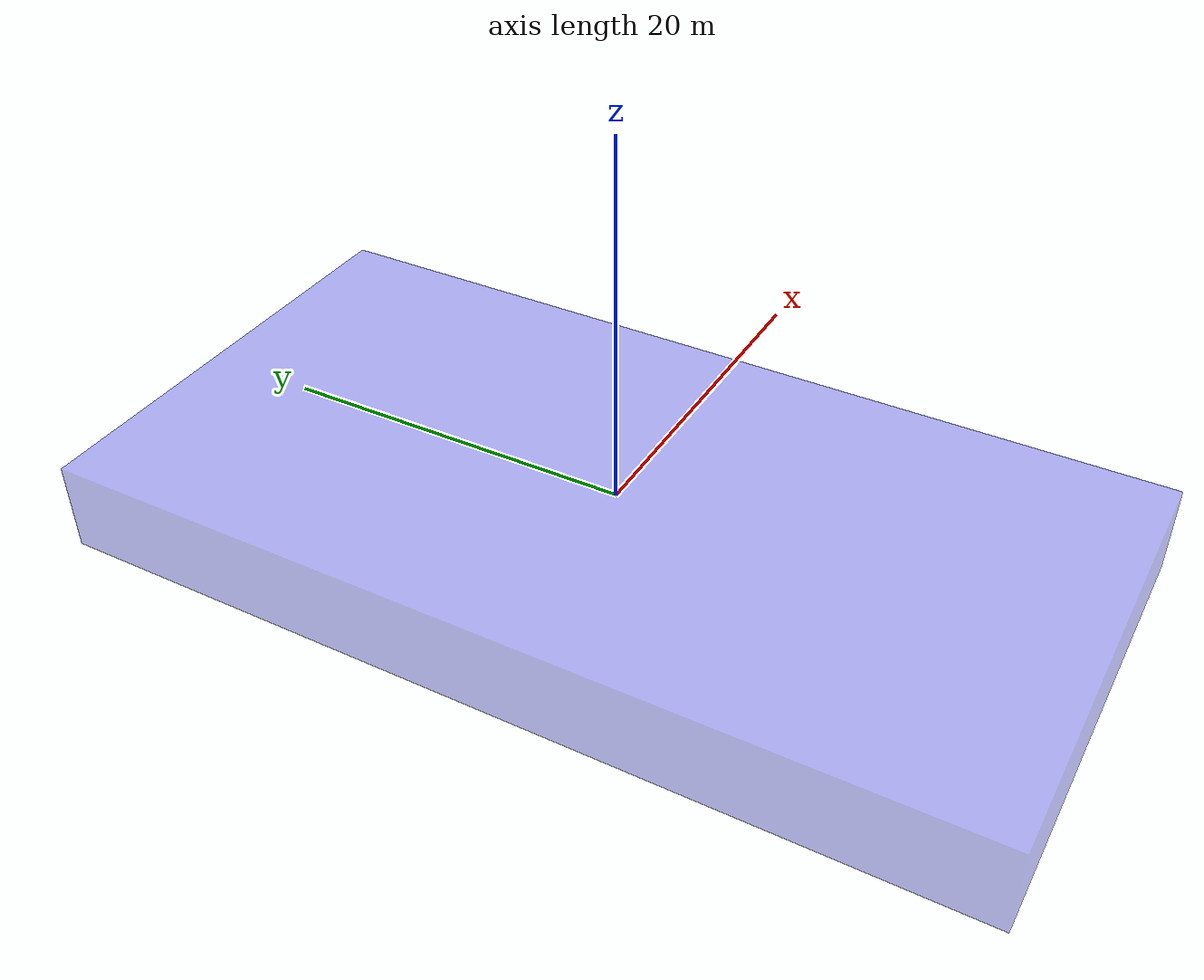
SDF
<?xml version='1.0'?>
<sdf version='1.5'>

    <model name="water">
      <static>true</static>
      <pose>0 0 -1.5 3.1415 0 3.1415</pose>
      <link name="link">
        <visual name="visual">
          <transparency>0.6</transparency>
          <cast_shadows>false</cast_shadows>
          <geometry>
            <box>
              <size>26 51 5</size>
            </box>
          </geometry>
          <material>
            <ambient>0.2 0.2 0.9 1</ambient>
            <diffuse>0.2 0.2 0.9 1</diffuse>
            <specular>0.1 0.1 0.3 1</specular>
            <emissive>0 0 0 1</emissive>
          </material>
        </visual>
      </link>
    </model>

</sdf>
